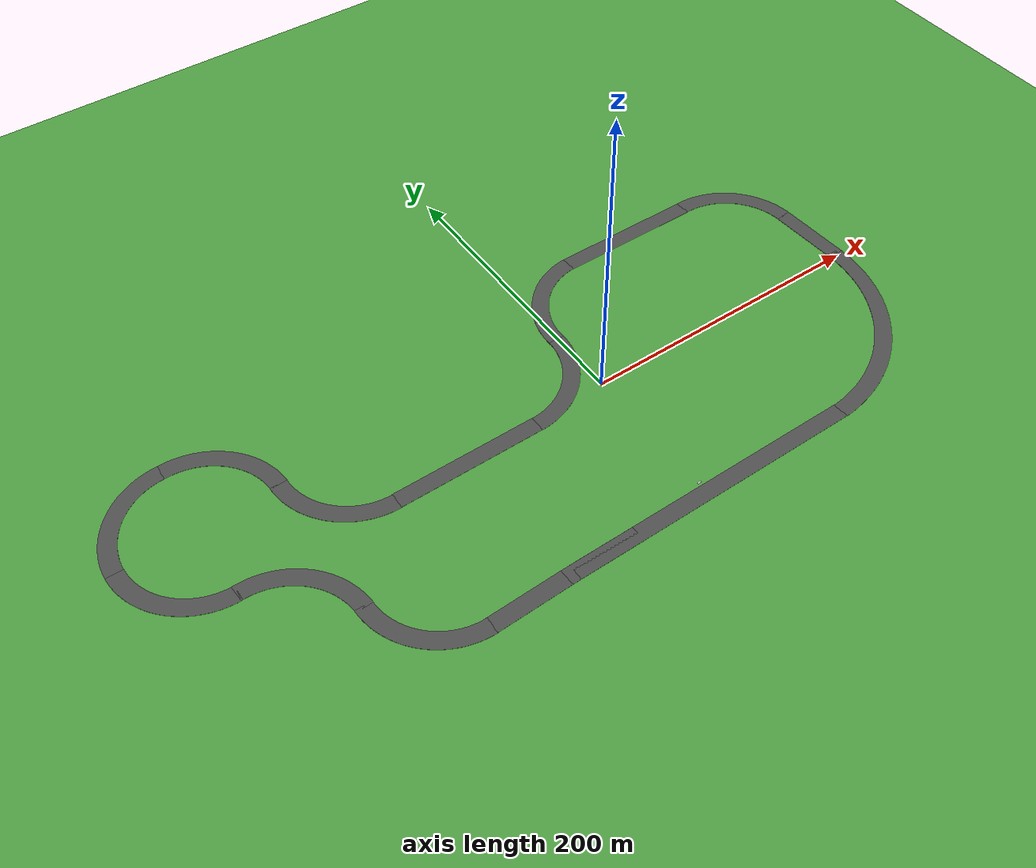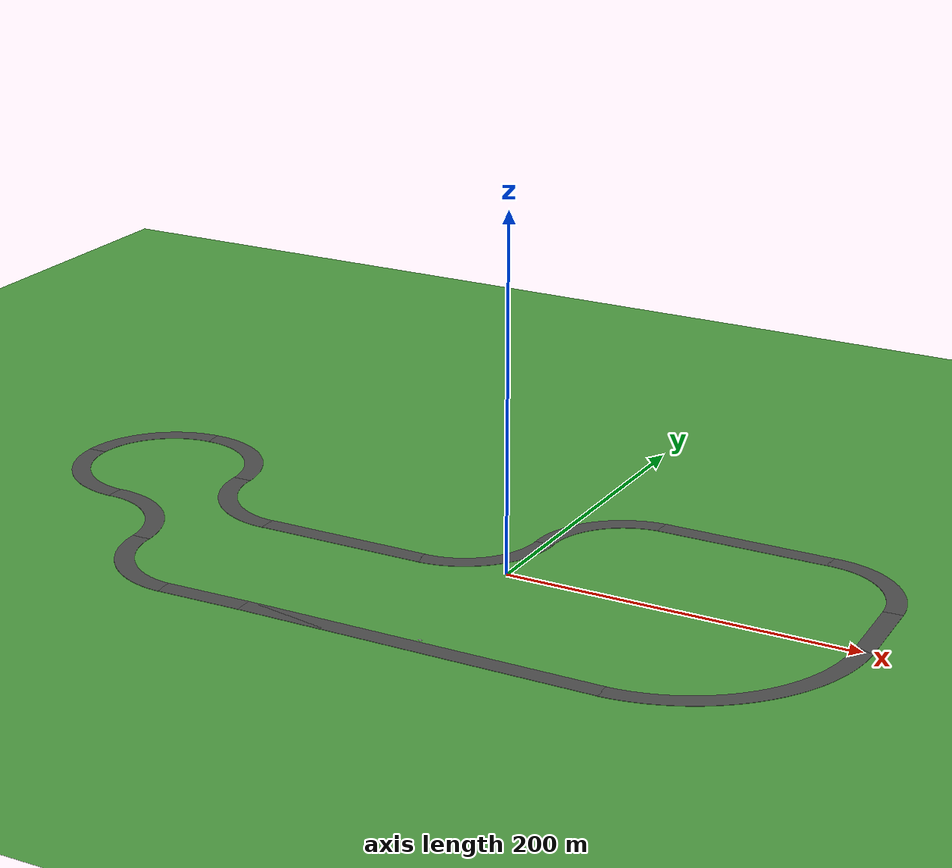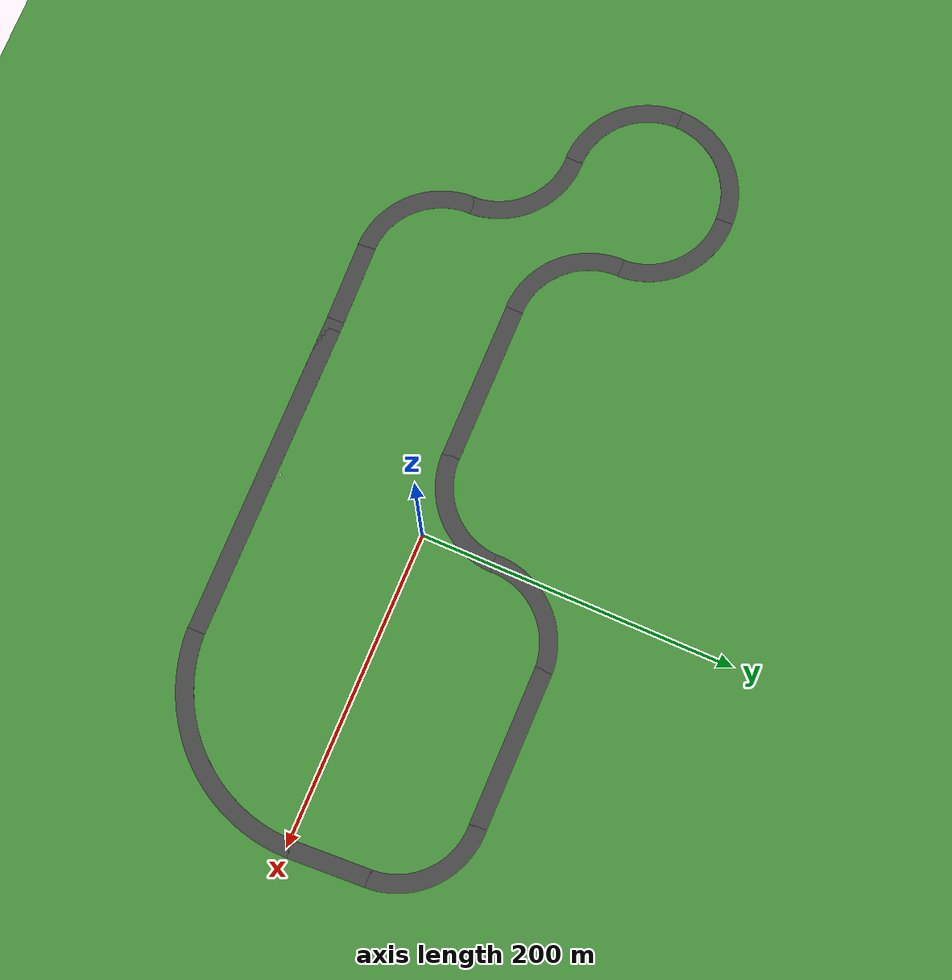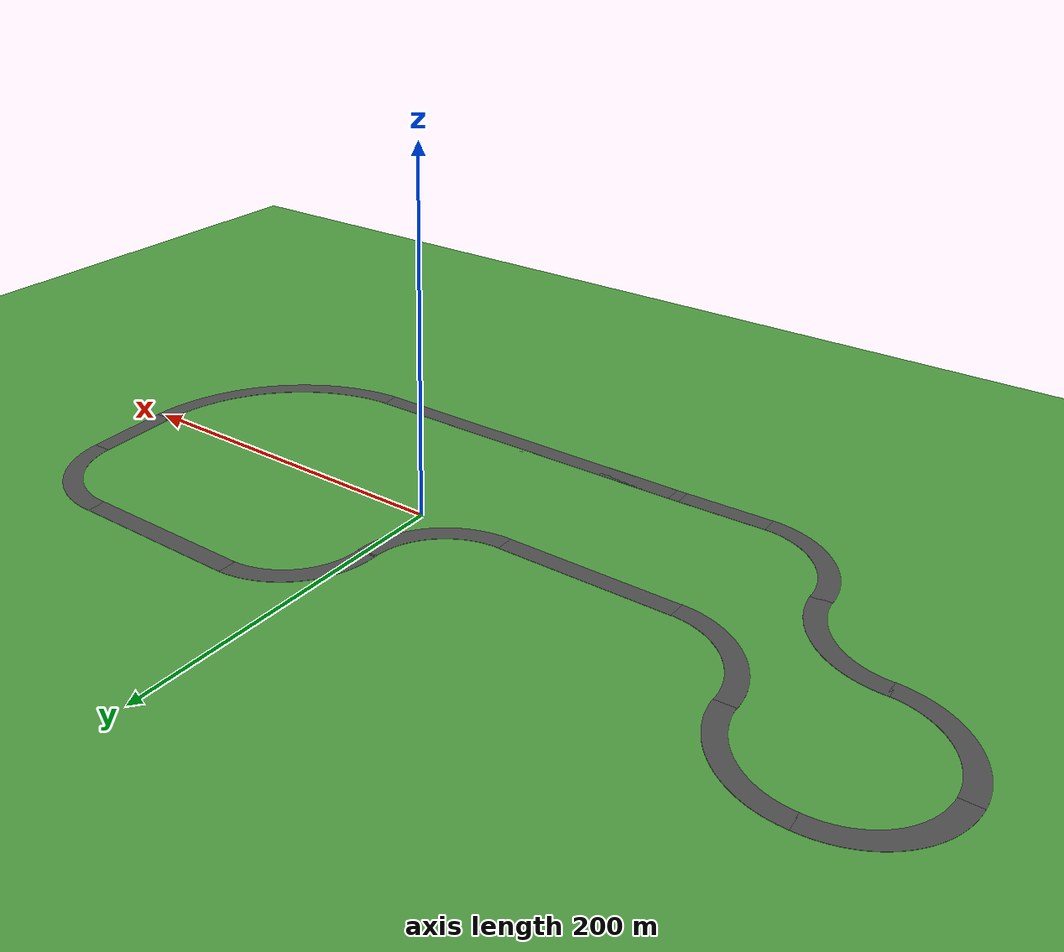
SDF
<sdf version="1.7">
 <world name="default">
  <light name="sun" type="directional">
   <pose>0 0 10 0 -0 0</pose>
   <diffuse>0.8 0.8 0.8 1</diffuse>
   <specular>0.2 0.2 0.2 1</specular>
   <attenuation>
    <range>1000</range>
    <constant>0.9</constant>
    <linear>0.01</linear>
    <quadratic>0.001</quadratic>
   </attenuation>
   <direction>-0.5 0.1 -0.9</direction>
   <spot><inner_angle>0</inner_angle><outer_angle>0</outer_angle><falloff>0</falloff></spot>
  </light>
  <scene>
   <ambient>0.4 0.4 0.4 1</ambient>
   <background>0 0.9 1 1</background>
   <shadows>1</shadows>
   <grid>0</grid>
  </scene>
  <model name="ground_plane">
   <pose>0 0 0 0 -0 0.05</pose>
   <static>1</static>
   <link name="link">
    <collision name="collision">
     <geometry><plane><normal>0 0 1</normal><size>100 100</size></plane></geometry>
     <surface><friction><ode><mu>100</mu><mu2>50</mu2></ode></friction></surface>
    </collision>
    <visual name="visual">
     <cast_shadows>0</cast_shadows>
     <geometry><plane><normal>0 0 1</normal><size>10000 10000</size></plane></geometry>
     <material>
      <script><uri>file://media/materials/scripts/ds_sim.material</uri><name>DSSim/GrassBackground</name></script>
     </material>
    </visual>
   </link>
  </model>
  <gravity>0 0 -9.8</gravity>
  <magnetic_field>6e-06 2.3e-05 -4.2e-05</magnetic_field>
  <atmosphere type="adiabatic"/>
  <physics name="default_physics" default="0" type="ode">
   <max_step_size>0.001</max_step_size>
   <real_time_factor>1</real_time_factor>
   <real_time_update_rate>1000</real_time_update_rate>
  </physics>
  <scene>
   <ambient>0.4 0.4 0.4 1</ambient>
   <background>0.7 0.7 0.7 1</background>
   <shadows>1</shadows>
   <grid>0</grid>
  </scene>
  <spherical_coordinates>
   <surface_model>EARTH_WGS84</surface_model>
   <latitude_deg>0</latitude_deg>
   <longitude_deg>0</longitude_deg>
   <elevation>0</elevation>
   <heading_deg>0</heading_deg>
  </spherical_coordinates>
  <model name="(DS) Straight Road - 200m_8">
   <static>1</static>
   <link name="link">
    <inertial>
     <mass>1</mass>
     <inertia><ixx>1</ixx><iyy>1</iyy><izz>1</izz><ixy>0</ixy><ixz>0</ixz><iyz>0</iyz></inertia>
    </inertial>
    <collision name="collision">
     <geometry><mesh><uri>model://ds_straight_road_200m/meshes/straight_road_200m.dae</uri></mesh></geometry>
    </collision>
    <visual name="visual">
     <geometry><mesh><uri>model://ds_straight_road_200m/meshes/straight_road_200m.dae</uri></mesh></geometry>
     <material>
      <script><uri>file://media/materials/scripts/ds_sim.material</uri><name>DSSim/Road</name></script>
     </material>
    </visual>
   </link>
   <pose>5.39069 -90.765 0 0 -0 0</pose>
  </model>
  <model name="staring_point">
   <link name="link">
    <visual name="visual"><geometry><box><size>2.40871 1.07107 0.02</size></box></geometry></visual>
    <collision name="collision"><geometry><box><size>2.40871 1.07107 0.02</size></box></geometry></collision>
   </link>
   <static>1</static>
   <pose>0 -93 0 0 -0 0</pose>
  </model>
  <model name="(DS) Curved Road - 100m_3_clone">
   <static>1</static>
   <link name="link">
    <inertial>
     <mass>1</mass>
     <inertia><ixx>1</ixx><iyy>1</iyy><izz>1</izz><ixy>0</ixy><ixz>0</ixz><iyz>0</iyz></inertia>
    </inertial>
    <collision name="collision">
     <geometry><mesh><uri>model://ds_curved_road_100m/meshes/curved_road_100m.dae</uri></mesh></geometry>
    </collision>
    <visual name="visual">
     <geometry><mesh><uri>model://ds_curved_road_100m/meshes/curved_road_100m.dae</uri></mesh></geometry>
     <material>
      <script><uri>file://media/materials/scripts/ds_sim.material</uri><name>DSSim/Road</name></script>
     </material>
    </visual>
   </link>
   <pose>155.219 -51.1403 0 0 -0 0.05</pose>
  </model>
  <model name="(DS) Straight Road - 50m_clone">
   <static>1</static>
   <link name="link">
    <inertial>
     <mass>1</mass>
     <inertia><ixx>1</ixx><iyy>1</iyy><izz>1</izz><ixy>0</ixy><ixz>0</ixz><iyz>0</iyz></inertia>
    </inertial>
    <collision name="collision">
     <geometry><mesh><uri>model://ds_straight_road_50m/meshes/straight_road_50m.dae</uri></mesh></geometry>
    </collision>
    <visual name="visual">
     <geometry><mesh><uri>model://ds_straight_road_50m/meshes/straight_road_50m.dae</uri></mesh></geometry>
     <material>
      <script><uri>file://media/materials/scripts/ds_sim.material</uri><name>DSSim/Road</name></script>
     </material>
    </visual>
   </link>
   <pose>208.613 26.8735 0 0 0 -1.5207</pose>
  </model>
  <model name="(DS) Curved Road - 50m_3_clone">
   <static>1</static>
   <link name="link">
    <inertial>
     <mass>1</mass>
     <inertia><ixx>1</ixx><iyy>1</iyy><izz>1</izz><ixy>0</ixy><ixz>0</ixz><iyz>0</iyz></inertia>
    </inertial>
    <collision name="collision">
     <geometry><mesh><uri>model://ds_curved_road_50m/meshes/curved_road_50m.dae</uri></mesh></geometry>
    </collision>
    <visual name="visual">
     <geometry><mesh><uri>model://ds_curved_road_50m/meshes/curved_road_50m.dae</uri></mesh></geometry>
     <material>
      <script><uri>file://media/materials/scripts/ds_sim.material</uri><name>DSSim/Road</name></script>
     </material>
    </visual>
   </link>
   <pose>173.802 77.118 0 0 -0 1.6207</pose>
  </model>
  <model name="(DS) Straight Road - 100m_0_clone">
   <static>1</static>
   <link name="link">
    <inertial>
     <mass>1</mass>
     <inertia><ixx>1</ixx><iyy>1</iyy><izz>1</izz><ixy>0</ixy><ixz>0</ixz><iyz>0</iyz></inertia>
    </inertial>
    <collision name="collision">
     <geometry><mesh><uri>model://ds_straight_road_100m/meshes/straight_road_100m.dae</uri></mesh></geometry>
    </collision>
    <visual name="visual">
     <geometry><mesh><uri>model://ds_straight_road_100m/meshes/straight_road_100m.dae</uri></mesh></geometry>
     <material>
      <script><uri>file://media/materials/scripts/ds_sim.material</uri><name>DSSim/Road</name></script>
     </material>
    </visual>
   </link>
   <pose>95.6012 107.933 0 0 -0 0</pose>
  </model>
  <model name="(DS) Curved Road - 50m_8_clone_clone">
   <static>1</static>
   <link name="link">
    <inertial>
     <mass>1</mass>
     <inertia><ixx>1</ixx><iyy>1</iyy><izz>1</izz><ixy>0</ixy><ixz>0</ixz><iyz>0</iyz></inertia>
    </inertial>
    <collision name="collision">
     <geometry><mesh><uri>model://ds_curved_road_50m/meshes/curved_road_50m.dae</uri></mesh></geometry>
    </collision>
    <visual name="visual">
     <geometry><mesh><uri>model://ds_curved_road_50m/meshes/curved_road_50m.dae</uri></mesh></geometry>
     <material>
      <script><uri>file://media/materials/scripts/ds_sim.material</uri><name>DSSim/Road</name></script>
     </material>
    </visual>
   </link>
   <pose>19.6272 74.3533 0 0 0 -3.09159</pose>
  </model>
  <model name="(DS) Curved Road - 50m_2_clone">
   <static>1</static>
   <link name="link">
    <inertial>
     <mass>1</mass>
     <inertia><ixx>1</ixx><iyy>1</iyy><izz>1</izz><ixy>0</ixy><ixz>0</ixz><iyz>0</iyz></inertia>
    </inertial>
    <collision name="collision">
     <geometry><mesh><uri>model://ds_curved_road_50m/meshes/curved_road_50m.dae</uri></mesh></geometry>
    </collision>
    <visual name="visual">
     <geometry><mesh><uri>model://ds_curved_road_50m/meshes/curved_road_50m.dae</uri></mesh></geometry>
     <material>
      <script><uri>file://media/materials/scripts/ds_sim.material</uri><name>DSSim/Road</name></script>
     </material>
    </visual>
   </link>
   <pose>-23.3153 18.9439 0 0 -0 0</pose>
  </model>
  <model name="(DS) Straight Road - 100m_0_clone_0">
   <static>1</static>
   <link name="link">
    <inertial>
     <mass>1</mass>
     <inertia><ixx>1</ixx><iyy>1</iyy><izz>1</izz><ixy>0</ixy><ixz>0</ixz><iyz>0</iyz></inertia>
    </inertial>
    <collision name="collision">
     <geometry><mesh><uri>model://ds_straight_road_100m/meshes/straight_road_100m.dae</uri></mesh></geometry>
    </collision>
    <visual name="visual">
     <geometry><mesh><uri>model://ds_straight_road_100m/meshes/straight_road_100m.dae</uri></mesh></geometry>
     <material>
      <script><uri>file://media/materials/scripts/ds_sim.material</uri><name>DSSim/Road</name></script>
     </material>
    </visual>
   </link>
   <pose>-99.4213 6.8294 0 0 -0 0</pose>
  </model>
  <model name="(DS) Curved Road - 50m_12_clone">
   <static>1</static>
   <link name="link">
    <inertial>
     <mass>1</mass>
     <inertia><ixx>1</ixx><iyy>1</iyy><izz>1</izz><ixy>0</ixy><ixz>0</ixz><iyz>0</iyz></inertia>
    </inertial>
    <collision name="collision">
     <geometry><mesh><uri>model://ds_curved_road_50m/meshes/curved_road_50m.dae</uri></mesh></geometry>
    </collision>
    <visual name="visual">
     <geometry><mesh><uri>model://ds_curved_road_50m/meshes/curved_road_50m.dae</uri></mesh></geometry>
     <material>
      <script><uri>file://media/materials/scripts/ds_sim.material</uri><name>DSSim/Road</name></script>
     </material>
    </visual>
   </link>
   <pose>-176.855 18.8318 0 0 0 -1.5707</pose>
  </model>
  <model name="(DS) Curved Road - 50m_3_clone_0">
   <static>1</static>
   <link name="link">
    <inertial>
     <mass>1</mass>
     <inertia><ixx>1</ixx><iyy>1</iyy><izz>1</izz><ixy>0</ixy><ixz>0</ixz><iyz>0</iyz></inertia>
    </inertial>
    <collision name="collision">
     <geometry><mesh><uri>model://ds_curved_road_50m/meshes/curved_road_50m.dae</uri></mesh></geometry>
    </collision>
    <visual name="visual">
     <geometry><mesh><uri>model://ds_curved_road_50m/meshes/curved_road_50m.dae</uri></mesh></geometry>
     <material>
      <script><uri>file://media/materials/scripts/ds_sim.material</uri><name>DSSim/Road</name></script>
     </material>
    </visual>
   </link>
   <pose>-222.445 72.7069 0 0 -0 1.6207</pose>
  </model>
  <model name="(DS) Curved Road - 50m_1_clone">
   <static>1</static>
   <link name="link">
    <inertial>
     <mass>1</mass>
     <inertia><ixx>1</ixx><iyy>1</iyy><izz>1</izz><ixy>0</ixy><ixz>0</ixz><iyz>0</iyz></inertia>
    </inertial>
    <collision name="collision">
     <geometry><mesh><uri>model://ds_curved_road_50m/meshes/curved_road_50m.dae</uri></mesh></geometry>
    </collision>
    <visual name="visual">
     <geometry><mesh><uri>model://ds_curved_road_50m/meshes/curved_road_50m.dae</uri></mesh></geometry>
     <material>
      <script><uri>file://media/materials/scripts/ds_sim.material</uri><name>DSSim/Road</name></script>
     </material>
    </visual>
   </link>
   <pose>-278.486 71.2929 0 0 -0 3.14159</pose>
  </model>
  <model name="(DS) Curved Road - 50m_12_clone_0">
   <static>1</static>
   <link name="link">
    <inertial>
     <mass>1</mass>
     <inertia><ixx>1</ixx><iyy>1</iyy><izz>1</izz><ixy>0</ixy><ixz>0</ixz><iyz>0</iyz></inertia>
    </inertial>
    <collision name="collision">
     <geometry><mesh><uri>model://ds_curved_road_50m/meshes/curved_road_50m.dae</uri></mesh></geometry>
    </collision>
    <visual name="visual">
     <geometry><mesh><uri>model://ds_curved_road_50m/meshes/curved_road_50m.dae</uri></mesh></geometry>
     <material>
      <script><uri>file://media/materials/scripts/ds_sim.material</uri><name>DSSim/Road</name></script>
     </material>
    </visual>
   </link>
   <pose>-278.487 16.0753 0 0 0 -1.5707</pose>
  </model>
  <model name="(DS) Curved Road - 50m_3_clone_1">
   <static>1</static>
   <link name="link">
    <inertial>
     <mass>1</mass>
     <inertia><ixx>1</ixx><iyy>1</iyy><izz>1</izz><ixy>0</ixy><ixz>0</ixz><iyz>0</iyz></inertia>
    </inertial>
    <collision name="collision">
     <geometry><mesh><uri>model://ds_curved_road_50m/meshes/curved_road_50m.dae</uri></mesh></geometry>
    </collision>
    <visual name="visual">
     <geometry><mesh><uri>model://ds_curved_road_50m/meshes/curved_road_50m.dae</uri></mesh></geometry>
     <material>
      <script><uri>file://media/materials/scripts/ds_sim.material</uri><name>DSSim/Road</name></script>
     </material>
    </visual>
   </link>
   <pose>-223.319 -26.8647 0 0 -0 1.6207</pose>
  </model>
  <model name="(DS) Curved Road - 50m_12_clone_1">
   <static>1</static>
   <link name="link">
    <inertial>
     <mass>1</mass>
     <inertia><ixx>1</ixx><iyy>1</iyy><izz>1</izz><ixy>0</ixy><ixz>0</ixz><iyz>0</iyz></inertia>
    </inertial>
    <collision name="collision">
     <geometry><mesh><uri>model://ds_curved_road_50m/meshes/curved_road_50m.dae</uri></mesh></geometry>
    </collision>
    <visual name="visual">
     <geometry><mesh><uri>model://ds_curved_road_50m/meshes/curved_road_50m.dae</uri></mesh></geometry>
     <material>
      <script><uri>file://media/materials/scripts/ds_sim.material</uri><name>DSSim/Road</name></script>
     </material>
    </visual>
   </link>
   <pose>-177.671 -79.7748 0 0 0 -1.5707</pose>
  </model>
  <model name="(DS) Straight Road - 50m_2_clone">
   <static>1</static>
   <link name="link">
    <inertial>
     <mass>1</mass>
     <inertia><ixx>1</ixx><iyy>1</iyy><izz>1</izz><ixy>0</ixy><ixz>0</ixz><iyz>0</iyz></inertia>
    </inertial>
    <collision name="collision">
     <geometry><mesh><uri>model://ds_straight_road_50m/meshes/straight_road_50m.dae</uri></mesh></geometry>
    </collision>
    <visual name="visual">
     <geometry><mesh><uri>model://ds_straight_road_50m/meshes/straight_road_50m.dae</uri></mesh></geometry>
     <material>
      <script><uri>file://media/materials/scripts/ds_sim.material</uri><name>DSSim/Road</name></script>
     </material>
    </visual>
   </link>
   <pose>-125.713 -91.3728 0 0 -0 0.0207</pose>
  </model>
  <model name="(DS) Straight Road - 50m_2_clone_0">
   <static>1</static>
   <link name="link">
    <inertial>
     <mass>1</mass>
     <inertia><ixx>1</ixx><iyy>1</iyy><izz>1</izz><ixy>0</ixy><ixz>0</ixz><iyz>0</iyz></inertia>
    </inertial>
    <collision name="collision">
     <geometry><mesh><uri>model://ds_straight_road_50m/meshes/straight_road_50m.dae</uri></mesh></geometry>
    </collision>
    <visual name="visual">
     <geometry><mesh><uri>model://ds_straight_road_50m/meshes/straight_road_50m.dae</uri></mesh></geometry>
     <material>
      <script><uri>file://media/materials/scripts/ds_sim.material</uri><name>DSSim/Road</name></script>
     </material>
    </visual>
   </link>
   <pose>-75.7952 -90.8339 0 0 -0 0</pose>
  </model>
 </world>
</sdf>
